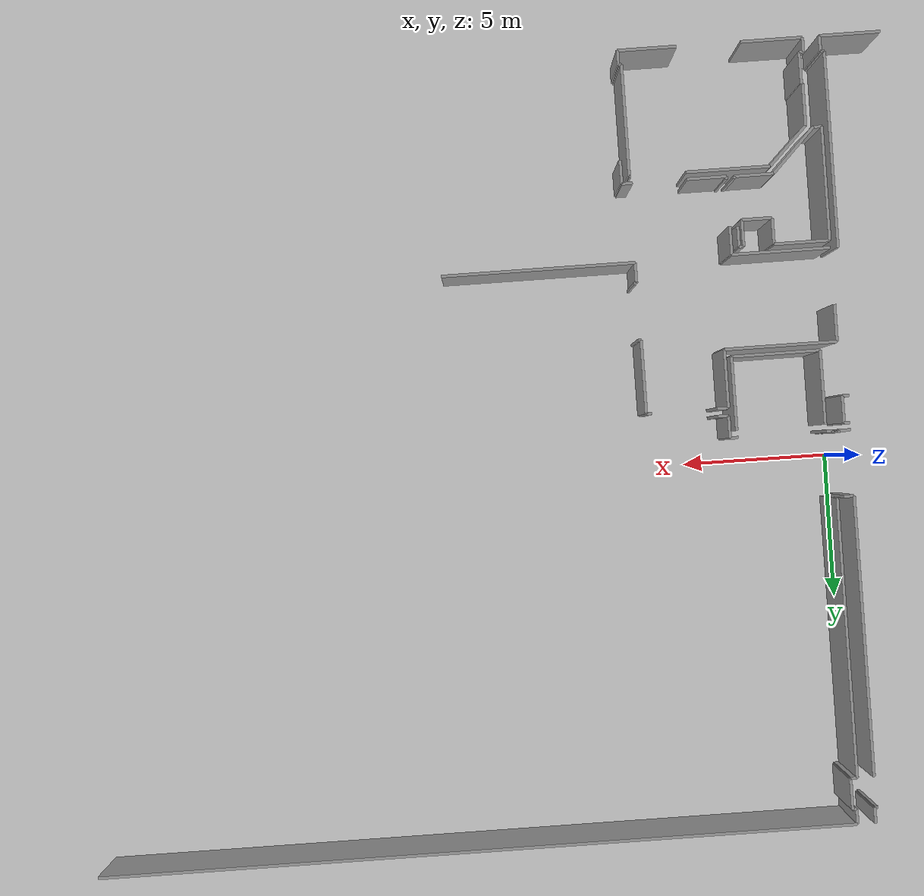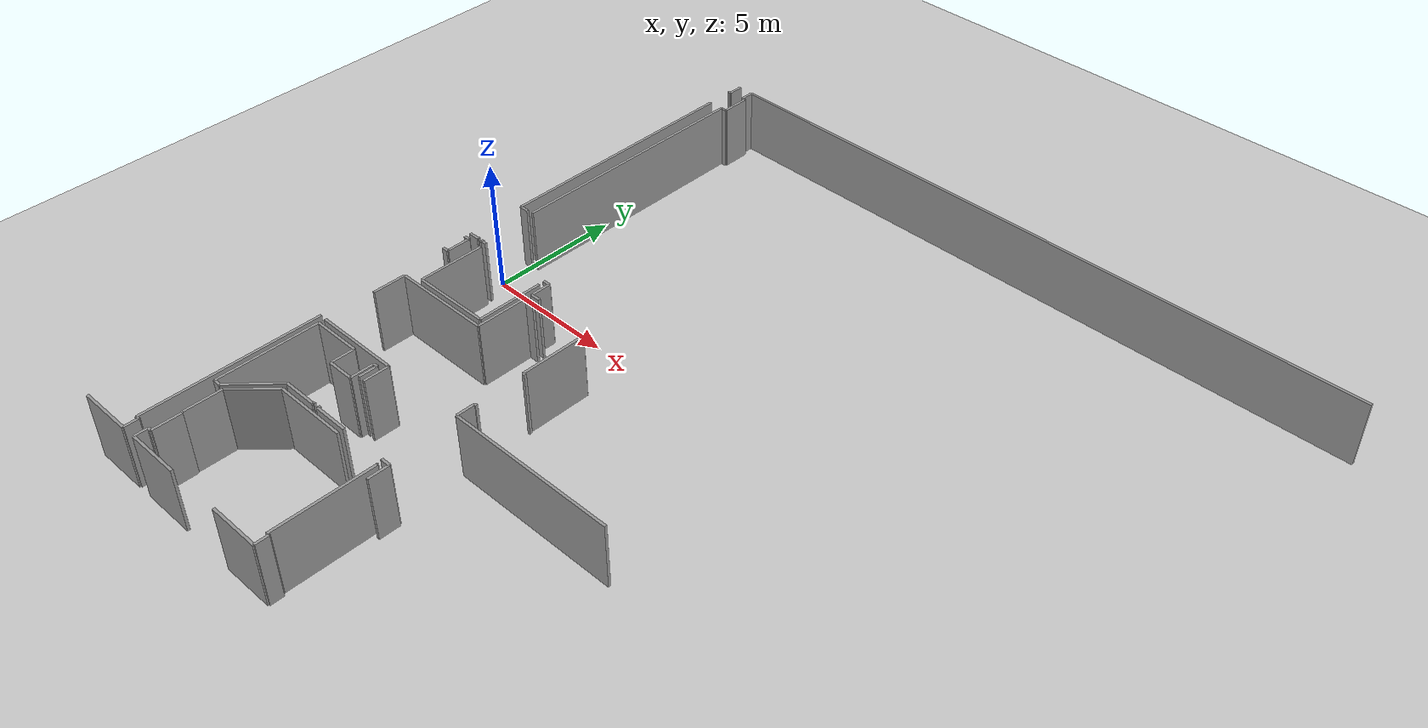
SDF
<sdf version="1.6">
 <world name="default">
  <model name="ground_plane">
   <static>1</static>
   <link name="link">
    <collision name="collision">
     <geometry><plane><normal>0 0 1</normal><size>100 100</size></plane></geometry>
     <surface><friction><ode><mu>100</mu><mu2>50</mu2></ode></friction></surface>
    </collision>
    <visual name="visual">
     <cast_shadows>0</cast_shadows>
     <geometry><plane><normal>0 0 1</normal><size>100 100</size></plane></geometry>
     <material>
      <script><uri>file://media/materials/scripts/gazebo.material</uri><name>Gazebo/Grey</name></script>
     </material>
    </visual>
   </link>
  </model>
  <model name="0510040946_A-40">
   <static>1</static>
   <link name="Wall_46">
    <collision name="Wall_46_Collision">
     <geometry><box><size>0.52936961388 0.1 2.5</size></box></geometry>
     <pose>0.26468480694 0 1.25 0 0 0</pose>
    </collision>
    <visual name="Wall_46_Visual">
     <pose>0.26468480694 0 1.25 0 0 0</pose>
     <geometry><box><size>0.52936961388 0.1 2.5</size></box></geometry>
     <material>
      <script><uri>file://media/materials/scripts/gazebo.material</uri><name>Gazebo/Grey</name></script>
      <ambient>1 1 1 1</ambient>
     </material>
    </visual>
    <pose>58.0574139013 -0.00456571780059 0 0 0 -1.57079632679</pose>
   </link>
   <link name="Wall_47">
    <collision name="Wall_47_Collision">
     <geometry><box><size>0.116806280398 0.1 2.5</size></box></geometry>
     <pose>0.0584031401992 0 1.25 0 0 0</pose>
    </collision>
    <visual name="Wall_47_Visual">
     <pose>0.0584031401992 0 1.25 0 0 0</pose>
     <geometry><box><size>0.116806280398 0.1 2.5</size></box></geometry>
     <material>
      <script><uri>file://media/materials/scripts/gazebo.material</uri><name>Gazebo/Grey</name></script>
      <ambient>1 1 1 1</ambient>
     </material>
    </visual>
    <pose>58.0574139013 -0.53393533168 0 0 0 3.14159265359</pose>
   </link>
   <link name="Wall_50">
    <collision name="Wall_50_Collision">
     <geometry><box><size>9.52383368105 0.1 2.5</size></box></geometry>
     <pose>4.76191684052 0 1.25 0 0 0</pose>
    </collision>
    <visual name="Wall_50_Visual">
     <pose>4.76191684052 0 1.25 0 0 0</pose>
     <geometry><box><size>9.52383368105 0.1 2.5</size></box></geometry>
     <material>
      <script><uri>file://media/materials/scripts/gazebo.material</uri><name>Gazebo/Grey</name></script>
      <ambient>1 1 1 1</ambient>
     </material>
    </visual>
    <pose>58.0036398917 -1.57707502362 0 0 0 -1.57079632679</pose>
   </link>
   <link name="Wall_51">
    <collision name="Wall_51_Collision">
     <geometry><box><size>0.356252813941 0.1 2.5</size></box></geometry>
     <pose>0.17812640697 0 1.25 0 0 0</pose>
    </collision>
    <visual name="Wall_51_Visual">
     <pose>0.17812640697 0 1.25 0 0 0</pose>
     <geometry><box><size>0.356252813941 0.1 2.5</size></box></geometry>
     <material>
      <script><uri>file://media/materials/scripts/gazebo.material</uri><name>Gazebo/Grey</name></script>
      <ambient>1 1 1 1</ambient>
     </material>
    </visual>
    <pose>58.0036398917 -11.1009087047 0 0 0 0.0</pose>
   </link>
   <link name="Wall_52">
    <collision name="Wall_52_Collision">
     <geometry><box><size>0.0750806927209 0.1 2.5</size></box></geometry>
     <pose>0.0375403463604 0 1.25 0 0 0</pose>
    </collision>
    <visual name="Wall_52_Visual">
     <pose>0.0375403463604 0 1.25 0 0 0</pose>
     <geometry><box><size>0.0750806927209 0.1 2.5</size></box></geometry>
     <material>
      <script><uri>file://media/materials/scripts/gazebo.material</uri><name>Gazebo/Grey</name></script>
      <ambient>1 1 1 1</ambient>
     </material>
    </visual>
    <pose>58.3598927056 -13.2592249694 0 0 0 -1.57079632679</pose>
   </link>
   <link name="Wall_53">
    <collision name="Wall_53_Collision">
     <geometry><box><size>0.402544119419 0.1 2.5</size></box></geometry>
     <pose>0.201272059709 0 1.25 0 0 0</pose>
    </collision>
    <visual name="Wall_53_Visual">
     <pose>0.201272059709 0 1.25 0 0 0</pose>
     <geometry><box><size>0.402544119419 0.1 2.5</size></box></geometry>
     <material>
      <script><uri>file://media/materials/scripts/gazebo.material</uri><name>Gazebo/Grey</name></script>
      <ambient>1 1 1 1</ambient>
     </material>
    </visual>
    <pose>58.3598927056 -13.3343056621 0 0 0 3.14159265359</pose>
   </link>
   <link name="Wall_133">
    <collision name="Wall_133_Collision">
     <geometry><box><size>6.66772354579 0.1 2.5</size></box></geometry>
     <pose>3.33386177289 0 1.25 0 0 0</pose>
    </collision>
    <visual name="Wall_133_Visual">
     <pose>3.33386177289 0 1.25 0 0 0</pose>
     <geometry><box><size>6.66772354579 0.1 2.5</size></box></geometry>
     <material>
      <script><uri>file://media/materials/scripts/gazebo.material</uri><name>Gazebo/Grey</name></script>
      <ambient>1 1 1 1</ambient>
     </material>
    </visual>
    <pose>57.9477098486 -19.5032245382 0 0 0 -1.57079632679</pose>
   </link>
   <link name="Wall_134">
    <collision name="Wall_134_Collision">
     <geometry><box><size>0.122132951166 0.1 2.5</size></box></geometry>
     <pose>0.0610664755829 0 1.25 0 0 0</pose>
    </collision>
    <visual name="Wall_134_Visual">
     <pose>0.0610664755829 0 1.25 0 0 0</pose>
     <geometry><box><size>0.122132951166 0.1 2.5</size></box></geometry>
     <material>
      <script><uri>file://media/materials/scripts/gazebo.material</uri><name>Gazebo/Grey</name></script>
      <ambient>1 1 1 1</ambient>
     </material>
    </visual>
    <pose>57.9477098486 -26.170948084 0 0 0 0.0</pose>
   </link>
   <link name="Wall_135">
    <collision name="Wall_135_Collision">
     <geometry><box><size>0.52340881564 0.1 2.5</size></box></geometry>
     <pose>0.26170440782 0 1.25 0 0 0</pose>
    </collision>
    <visual name="Wall_135_Visual">
     <pose>0.26170440782 0 1.25 0 0 0</pose>
     <geometry><box><size>0.52340881564 0.1 2.5</size></box></geometry>
     <material>
      <script><uri>file://media/materials/scripts/gazebo.material</uri><name>Gazebo/Grey</name></script>
      <ambient>1 1 1 1</ambient>
     </material>
    </visual>
    <pose>58.0698427998 -26.170948084 0 0 0 -1.57079632679</pose>
   </link>
   <link name="Wall_136">
    <collision name="Wall_136_Collision">
     <geometry><box><size>2.05558761422 0.1 2.5</size></box></geometry>
     <pose>1.02779380711 0 1.25 0 0 0</pose>
    </collision>
    <visual name="Wall_136_Visual">
     <pose>1.02779380711 0 1.25 0 0 0</pose>
     <geometry><box><size>2.05558761422 0.1 2.5</size></box></geometry>
     <material>
      <script><uri>file://media/materials/scripts/gazebo.material</uri><name>Gazebo/Grey</name></script>
      <ambient>1 1 1 1</ambient>
     </material>
    </visual>
    <pose>58.0698427998 -26.6943568996 0 0 0 3.14159265359</pose>
   </link>
   <link name="Wall_139">
    <collision name="Wall_139_Collision">
     <geometry><box><size>0.203047616632 0.1 2.5</size></box></geometry>
     <pose>0.101523808316 0 1.25 0 0 0</pose>
    </collision>
    <visual name="Wall_139_Visual">
     <pose>0.101523808316 0 1.25 0 0 0</pose>
     <geometry><box><size>0.203047616632 0.1 2.5</size></box></geometry>
     <material>
      <script><uri>file://media/materials/scripts/gazebo.material</uri><name>Gazebo/Grey</name></script>
      <ambient>1 1 1 1</ambient>
     </material>
    </visual>
    <pose>57.9595046196 -13.5789520409 0 0 0 0.0</pose>
   </link>
   <link name="Wall_140">
    <collision name="Wall_140_Collision">
     <geometry><box><size>0.919611660336 0.1 2.5</size></box></geometry>
     <pose>0.459805830168 0 1.25 0 0 0</pose>
    </collision>
    <visual name="Wall_140_Visual">
     <pose>0.459805830168 0 1.25 0 0 0</pose>
     <geometry><box><size>0.919611660336 0.1 2.5</size></box></geometry>
     <material>
      <script><uri>file://media/materials/scripts/gazebo.material</uri><name>Gazebo/Grey</name></script>
      <ambient>1 1 1 1</ambient>
     </material>
    </visual>
    <pose>58.1625522363 -13.5789520409 0 0 0 -1.57079632679</pose>
   </link>
   <link name="Wall_141">
    <collision name="Wall_141_Collision">
     <geometry><box><size>0.237036849147 0.1 2.5</size></box></geometry>
     <pose>0.118518424574 0 1.25 0 0 0</pose>
    </collision>
    <visual name="Wall_141_Visual">
     <pose>0.118518424574 0 1.25 0 0 0</pose>
     <geometry><box><size>0.237036849147 0.1 2.5</size></box></geometry>
     <material>
      <script><uri>file://media/materials/scripts/gazebo.material</uri><name>Gazebo/Grey</name></script>
      <ambient>1 1 1 1</ambient>
     </material>
    </visual>
    <pose>58.1625522363 -14.4985637013 0 0 0 3.14159265359</pose>
   </link>
   <link name="Wall_145">
    <collision name="Wall_145_Collision">
     <geometry><box><size>9.49529794479 0.1 2.5</size></box></geometry>
     <pose>4.7476489724 0 1.25 0 0 0</pose>
    </collision>
    <visual name="Wall_145_Visual">
     <pose>4.7476489724 0 1.25 0 0 0</pose>
     <geometry><box><size>9.49529794479 0.1 2.5</size></box></geometry>
     <material>
      <script><uri>file://media/materials/scripts/gazebo.material</uri><name>Gazebo/Grey</name></script>
      <ambient>1 1 1 1</ambient>
     </material>
    </visual>
    <pose>58.5744814423 -11.0744021763 0 0 0 1.57079632679</pose>
   </link>
   <link name="Wall_146">
    <collision name="Wall_146_Collision">
     <geometry><box><size>0.225495729151 0.1 2.5</size></box></geometry>
     <pose>0.112747864576 0 1.25 0 0 0</pose>
    </collision>
    <visual name="Wall_146_Visual">
     <pose>0.112747864576 0 1.25 0 0 0</pose>
     <geometry><box><size>0.225495729151 0.1 2.5</size></box></geometry>
     <material>
      <script><uri>file://media/materials/scripts/gazebo.material</uri><name>Gazebo/Grey</name></script>
      <ambient>1 1 1 1</ambient>
     </material>
    </visual>
    <pose>58.5744814423 -1.57910423153 0 0 0 0.0</pose>
   </link>
   <link name="Wall_147">
    <collision name="Wall_147_Collision">
     <geometry><box><size>1.05277842952 0.1 2.5</size></box></geometry>
     <pose>0.52638921476 0 1.25 0 0 0</pose>
    </collision>
    <visual name="Wall_147_Visual">
     <pose>0.52638921476 0 1.25 0 0 0</pose>
     <geometry><box><size>1.05277842952 0.1 2.5</size></box></geometry>
     <material>
      <script><uri>file://media/materials/scripts/gazebo.material</uri><name>Gazebo/Grey</name></script>
      <ambient>1 1 1 1</ambient>
     </material>
    </visual>
    <pose>58.7999771714 -1.57910423153 0 0 0 1.57079632679</pose>
   </link>
   <link name="Wall_148">
    <collision name="Wall_148_Collision">
     <geometry><box><size>0.13164486325 0.1 2.5</size></box></geometry>
     <pose>0.0658224316252 0 1.25 0 0 0</pose>
    </collision>
    <visual name="Wall_148_Visual">
     <pose>0.0658224316252 0 1.25 0 0 0</pose>
     <geometry><box><size>0.13164486325 0.1 2.5</size></box></geometry>
     <material>
      <script><uri>file://media/materials/scripts/gazebo.material</uri><name>Gazebo/Grey</name></script>
      <ambient>1 1 1 1</ambient>
     </material>
    </visual>
    <pose>58.7999771714 -0.526325802013 0 0 0 3.14159265359</pose>
   </link>
   <link name="Wall_149">
    <collision name="Wall_149_Collision">
     <geometry><box><size>0.509838487733 0.1 2.5</size></box></geometry>
     <pose>0.254919243866 0 1.25 0 0 0</pose>
    </collision>
    <visual name="Wall_149_Visual">
     <pose>0.254919243866 0 1.25 0 0 0</pose>
     <geometry><box><size>0.509838487733 0.1 2.5</size></box></geometry>
     <material>
      <script><uri>file://media/materials/scripts/gazebo.material</uri><name>Gazebo/Grey</name></script>
      <ambient>1 1 1 1</ambient>
     </material>
    </visual>
    <pose>58.6683323082 -0.526325802013 0 0 0 1.57079632679</pose>
   </link>
   <link name="Wall_150">
    <collision name="Wall_150_Collision">
     <geometry><box><size>25.7486191874 0.1 2.5</size></box></geometry>
     <pose>12.8743095937 0 1.25 0 0 0</pose>
    </collision>
    <visual name="Wall_150_Visual">
     <pose>12.8743095937 0 1.25 0 0 0</pose>
     <geometry><box><size>25.7486191874 0.1 2.5</size></box></geometry>
     <material>
      <script><uri>file://media/materials/scripts/gazebo.material</uri><name>Gazebo/Grey</name></script>
      <ambient>1 1 1 1</ambient>
     </material>
    </visual>
    <pose>58.6683323082 -0.0164873142799 0 0 0 0.0</pose>
   </link>
   <link name="Wall_165">
    <collision name="Wall_165_Collision">
     <geometry><box><size>0.365764726025 0.1 2.5</size></box></geometry>
     <pose>0.182882363013 0 1.25 0 0 0</pose>
    </collision>
    <visual name="Wall_165_Visual">
     <pose>0.182882363013 0 1.25 0 0 0</pose>
     <geometry><box><size>0.365764726025 0.1 2.5</size></box></geometry>
     <material>
      <script><uri>file://media/materials/scripts/gazebo.material</uri><name>Gazebo/Grey</name></script>
      <ambient>1 1 1 1</ambient>
     </material>
    </visual>
    <pose>62.4080356633 -14.1014730781 0 0 0 3.14159265359</pose>
   </link>
   <link name="Wall_166">
    <collision name="Wall_166_Collision">
     <geometry><box><size>0.756767725448 0.1 2.5</size></box></geometry>
     <pose>0.378383862724 0 1.25 0 0 0</pose>
    </collision>
    <visual name="Wall_166_Visual">
     <pose>0.378383862724 0 1.25 0 0 0</pose>
     <geometry><box><size>0.756767725448 0.1 2.5</size></box></geometry>
     <material>
      <script><uri>file://media/materials/scripts/gazebo.material</uri><name>Gazebo/Grey</name></script>
      <ambient>1 1 1 1</ambient>
     </material>
    </visual>
    <pose>62.0422709373 -14.1014730781 0 0 0 1.57079632679</pose>
   </link>
   <link name="Wall_167">
    <collision name="Wall_167_Collision">
     <geometry><box><size>0.269123699246 0.1 2.5</size></box></geometry>
     <pose>0.134561849623 0 1.25 0 0 0</pose>
    </collision>
    <visual name="Wall_167_Visual">
     <pose>0.134561849623 0 1.25 0 0 0</pose>
     <geometry><box><size>0.269123699246 0.1 2.5</size></box></geometry>
     <material>
      <script><uri>file://media/materials/scripts/gazebo.material</uri><name>Gazebo/Grey</name></script>
      <ambient>1 1 1 1</ambient>
     </material>
    </visual>
    <pose>62.0422709373 -13.3447053527 0 0 0 3.14159265359</pose>
   </link>
   <link name="Wall_168">
    <collision name="Wall_168_Collision">
     <geometry><box><size>0.212686354211 0.1 2.5</size></box></geometry>
     <pose>0.106343177105 0 1.25 0 0 0</pose>
    </collision>
    <visual name="Wall_168_Visual">
     <pose>0.106343177105 0 1.25 0 0 0</pose>
     <geometry><box><size>0.212686354211 0.1 2.5</size></box></geometry>
     <material>
      <script><uri>file://media/materials/scripts/gazebo.material</uri><name>Gazebo/Grey</name></script>
      <ambient>1 1 1 1</ambient>
     </material>
    </visual>
    <pose>58.7913530378 -13.3447053527 0 0 0 3.14159265359</pose>
   </link>
   <link name="Wall_169">
    <collision name="Wall_169_Collision">
     <geometry><box><size>0.076222122171 0.1 2.5</size></box></geometry>
     <pose>0.0381110610855 0 1.25 0 0 0</pose>
    </collision>
    <visual name="Wall_169_Visual">
     <pose>0.0381110610855 0 1.25 0 0 0</pose>
     <geometry><box><size>0.076222122171 0.1 2.5</size></box></geometry>
     <material>
      <script><uri>file://media/materials/scripts/gazebo.material</uri><name>Gazebo/Grey</name></script>
      <ambient>1 1 1 1</ambient>
     </material>
    </visual>
    <pose>58.5786666836 -13.3447053527 0 0 0 1.57079632679</pose>
   </link>
   <link name="Wall_170">
    <collision name="Wall_170_Collision">
     <geometry><box><size>2.51837384351 0.1 2.5</size></box></geometry>
     <pose>1.25918692176 0 1.25 0 0 0</pose>
    </collision>
    <visual name="Wall_170_Visual">
     <pose>1.25918692176 0 1.25 0 0 0</pose>
     <geometry><box><size>2.51837384351 0.1 2.5</size></box></geometry>
     <material>
      <script><uri>file://media/materials/scripts/gazebo.material</uri><name>Gazebo/Grey</name></script>
      <ambient>1 1 1 1</ambient>
     </material>
    </visual>
    <pose>58.7995966949 -16.0944088981 0 0 0 1.57079632679</pose>
   </link>
   <link name="Wall_171">
    <collision name="Wall_171_Collision">
     <geometry><box><size>2.51013018637 0.1 2.5</size></box></geometry>
     <pose>1.25506509319 0 1.25 0 0 0</pose>
    </collision>
    <visual name="Wall_171_Visual">
     <pose>1.25506509319 0 1.25 0 0 0</pose>
     <geometry><box><size>2.51013018637 0.1 2.5</size></box></geometry>
     <material>
      <script><uri>file://media/materials/scripts/gazebo.material</uri><name>Gazebo/Grey</name></script>
      <ambient>1 1 1 1</ambient>
     </material>
    </visual>
    <pose>61.8026975783 -13.5760350546 0 0 0 -1.57079632679</pose>
   </link>
   <link name="Wall_172">
    <collision name="Wall_172_Collision">
     <geometry><box><size>3.00311219794 0.1 2.5</size></box></geometry>
     <pose>1.50155609897 0 1.25 0 0 0</pose>
    </collision>
    <visual name="Wall_172_Visual">
     <pose>1.50155609897 0 1.25 0 0 0</pose>
     <geometry><box><size>3.00311219794 0.1 2.5</size></box></geometry>
     <material>
      <script><uri>file://media/materials/scripts/gazebo.material</uri><name>Gazebo/Grey</name></script>
      <ambient>1 1 1 1</ambient>
     </material>
    </visual>
    <pose>61.8026975783 -16.0861652409 0 0 0 -3.13884761213</pose>
   </link>
   <link name="Wall_173">
    <collision name="Wall_173_Collision">
     <geometry><box><size>3.81643277932 0.1 2.5</size></box></geometry>
     <pose>1.90821638966 0 1.25 0 0 0</pose>
    </collision>
    <visual name="Wall_173_Visual">
     <pose>1.90821638966 0 1.25 0 0 0</pose>
     <geometry><box><size>3.81643277932 0.1 2.5</size></box></geometry>
     <material>
      <script><uri>file://media/materials/scripts/gazebo.material</uri><name>Gazebo/Grey</name></script>
      <ambient>1 1 1 1</ambient>
     </material>
    </visual>
    <pose>58.2074484613 -16.3446355986 0 0 0 0.0</pose>
   </link>
   <link name="Wall_174">
    <collision name="Wall_174_Collision">
     <geometry><box><size>1.97911184106 0.1 2.5</size></box></geometry>
     <pose>0.989555920531 0 1.25 0 0 0</pose>
    </collision>
    <visual name="Wall_174_Visual">
     <pose>0.989555920531 0 1.25 0 0 0</pose>
     <geometry><box><size>1.97911184106 0.1 2.5</size></box></geometry>
     <material>
      <script><uri>file://media/materials/scripts/gazebo.material</uri><name>Gazebo/Grey</name></script>
      <ambient>1 1 1 1</ambient>
     </material>
    </visual>
    <pose>62.0238812406 -16.3446355986 0 0 0 1.57079632679</pose>
   </link>
   <link name="Wall_175">
    <collision name="Wall_175_Collision">
     <geometry><box><size>0.394807764257 0.1 2.5</size></box></geometry>
     <pose>0.197403882128 0 1.25 0 0 0</pose>
    </collision>
    <visual name="Wall_175_Visual">
     <pose>0.197403882128 0 1.25 0 0 0</pose>
     <geometry><box><size>0.394807764257 0.1 2.5</size></box></geometry>
     <material>
      <script><uri>file://media/materials/scripts/gazebo.material</uri><name>Gazebo/Grey</name></script>
      <ambient>1 1 1 1</ambient>
     </material>
    </visual>
    <pose>62.0238812406 -14.3655237576 0 0 0 0.0</pose>
   </link>
   <link name="Wall_176">
    <collision name="Wall_176_Collision">
     <geometry><box><size>0.183516490485 0.1 2.5</size></box></geometry>
     <pose>0.0917582452425 0 1.25 0 0 0</pose>
    </collision>
    <visual name="Wall_176_Visual">
     <pose>0.0917582452425 0 1.25 0 0 0</pose>
     <geometry><box><size>0.183516490485 0.1 2.5</size></box></geometry>
     <material>
      <script><uri>file://media/materials/scripts/gazebo.material</uri><name>Gazebo/Grey</name></script>
      <ambient>1 1 1 1</ambient>
     </material>
    </visual>
    <pose>64.6284964204 -14.3655237576 0 0 0 0.0</pose>
   </link>
   <link name="Wall_177">
    <collision name="Wall_177_Collision">
     <geometry><box><size>2.48933080528 0.1 2.5</size></box></geometry>
     <pose>1.24466540264 0 1.25 0 0 0</pose>
    </collision>
    <visual name="Wall_177_Visual">
     <pose>1.24466540264 0 1.25 0 0 0</pose>
     <geometry><box><size>2.48933080528 0.1 2.5</size></box></geometry>
     <material>
      <script><uri>file://media/materials/scripts/gazebo.material</uri><name>Gazebo/Grey</name></script>
      <ambient>1 1 1 1</ambient>
     </material>
    </visual>
    <pose>64.8120129108 -14.3655237576 0 0 0 -1.57079632679</pose>
   </link>
   <link name="Wall_178">
    <collision name="Wall_178_Collision">
     <geometry><box><size>0.101460395569 0.1 2.5</size></box></geometry>
     <pose>0.0507301977844 0 1.25 0 0 0</pose>
    </collision>
    <visual name="Wall_178_Visual">
     <pose>0.0507301977844 0 1.25 0 0 0</pose>
     <geometry><box><size>0.101460395569 0.1 2.5</size></box></geometry>
     <material>
      <script><uri>file://media/materials/scripts/gazebo.material</uri><name>Gazebo/Grey</name></script>
      <ambient>1 1 1 1</ambient>
     </material>
    </visual>
    <pose>64.8120129108 -16.8548545629 0 0 0 0.0</pose>
   </link>
   <link name="Wall_179">
    <collision name="Wall_179_Collision">
     <geometry><box><size>0.0840853028276 0.1 2.5</size></box></geometry>
     <pose>0.0420426514138 0 1.25 0 0 0</pose>
    </collision>
    <visual name="Wall_179_Visual">
     <pose>0.0420426514138 0 1.25 0 0 0</pose>
     <geometry><box><size>0.0840853028276 0.1 2.5</size></box></geometry>
     <material>
      <script><uri>file://media/materials/scripts/gazebo.material</uri><name>Gazebo/Grey</name></script>
      <ambient>1 1 1 1</ambient>
     </material>
    </visual>
    <pose>64.9134733064 -18.7848849376 0 0 0 3.14159265359</pose>
   </link>
   <link name="Wall_180">
    <collision name="Wall_180_Collision">
     <geometry><box><size>0.703120541291 0.1 2.5</size></box></geometry>
     <pose>0.351560270646 0 1.25 0 0 0</pose>
    </collision>
    <visual name="Wall_180_Visual">
     <pose>0.351560270646 0 1.25 0 0 0</pose>
     <geometry><box><size>0.703120541291 0.1 2.5</size></box></geometry>
     <material>
      <script><uri>file://media/materials/scripts/gazebo.material</uri><name>Gazebo/Grey</name></script>
      <ambient>1 1 1 1</ambient>
     </material>
    </visual>
    <pose>64.8293880036 -18.7848849376 0 0 0 -1.57079632679</pose>
   </link>
   <link name="Wall_181">
    <collision name="Wall_181_Collision">
     <geometry><box><size>6.56524854626 0.1 2.5</size></box></geometry>
     <pose>3.28262427313 0 1.25 0 0 0</pose>
    </collision>
    <visual name="Wall_181_Visual">
     <pose>3.28262427313 0 1.25 0 0 0</pose>
     <geometry><box><size>6.56524854626 0.1 2.5</size></box></geometry>
     <material>
      <script><uri>file://media/materials/scripts/gazebo.material</uri><name>Gazebo/Grey</name></script>
      <ambient>1 1 1 1</ambient>
     </material>
    </visual>
    <pose>64.8293880036 -19.4880054789 0 0 0 0.0</pose>
   </link>
   <link name="Wall_187">
    <collision name="Wall_187_Collision">
     <geometry><box><size>0.800522521037 0.1 2.5</size></box></geometry>
     <pose>0.400261260519 0 1.25 0 0 0</pose>
    </collision>
    <visual name="Wall_187_Visual">
     <pose>0.400261260519 0 1.25 0 0 0</pose>
     <geometry><box><size>0.800522521037 0.1 2.5</size></box></geometry>
     <material>
      <script><uri>file://media/materials/scripts/gazebo.material</uri><name>Gazebo/Grey</name></script>
      <ambient>1 1 1 1</ambient>
     </material>
    </visual>
    <pose>65.0874778848 -22.9793845159 0 0 0 1.57079632679</pose>
   </link>
   <link name="Wall_188">
    <collision name="Wall_188_Collision">
     <geometry><box><size>0.36589155152 0.1 2.5</size></box></geometry>
     <pose>0.18294577576 0 1.25 0 0 0</pose>
    </collision>
    <visual name="Wall_188_Visual">
     <pose>0.18294577576 0 1.25 0 0 0</pose>
     <geometry><box><size>0.36589155152 0.1 2.5</size></box></geometry>
     <material>
      <script><uri>file://media/materials/scripts/gazebo.material</uri><name>Gazebo/Grey</name></script>
      <ambient>1 1 1 1</ambient>
     </material>
    </visual>
    <pose>65.0874778848 -22.1788619948 0 0 0 3.14159265359</pose>
   </link>
   <link name="Wall_189">
    <collision name="Wall_189_Collision">
     <geometry><box><size>1.33154086634 0.1 2.5</size></box></geometry>
     <pose>0.665770433172 0 1.25 0 0 0</pose>
    </collision>
    <visual name="Wall_189_Visual">
     <pose>0.665770433172 0 1.25 0 0 0</pose>
     <geometry><box><size>1.33154086634 0.1 2.5</size></box></geometry>
     <material>
      <script><uri>file://media/materials/scripts/gazebo.material</uri><name>Gazebo/Grey</name></script>
      <ambient>1 1 1 1</ambient>
     </material>
    </visual>
    <pose>62.8758949124 -22.1788619948 0 0 0 3.14159265359</pose>
   </link>
   <link name="Wall_190">
    <collision name="Wall_190_Collision">
     <geometry><box><size>0.0994311876573 0.1 2.5</size></box></geometry>
     <pose>0.0497155938287 0 1.25 0 0 0</pose>
    </collision>
    <visual name="Wall_190_Visual">
     <pose>0.0497155938287 0 1.25 0 0 0</pose>
     <geometry><box><size>0.0994311876573 0.1 2.5</size></box></geometry>
     <material>
      <script><uri>file://media/materials/scripts/gazebo.material</uri><name>Gazebo/Grey</name></script>
      <ambient>1 1 1 1</ambient>
     </material>
    </visual>
    <pose>61.5443540461 -22.1788619948 0 0 0 1.57079632679</pose>
   </link>
   <link name="Wall_191">
    <collision name="Wall_191_Collision">
     <geometry><box><size>0.961210422519 0.1 2.5</size></box></geometry>
     <pose>0.48060521126 0 1.25 0 0 0</pose>
    </collision>
    <visual name="Wall_191_Visual">
     <pose>0.48060521126 0 1.25 0 0 0</pose>
     <geometry><box><size>0.961210422519 0.1 2.5</size></box></geometry>
     <material>
      <script><uri>file://media/materials/scripts/gazebo.material</uri><name>Gazebo/Grey</name></script>
      <ambient>1 1 1 1</ambient>
     </material>
    </visual>
    <pose>61.5443540461 -20.4898000596 0 0 0 1.57079632679</pose>
   </link>
   <link name="Wall_192">
    <collision name="Wall_192_Collision">
     <geometry><box><size>3.33956892014 0.1 2.5</size></box></geometry>
     <pose>1.66978446007 0 1.25 0 0 0</pose>
    </collision>
    <visual name="Wall_192_Visual">
     <pose>1.66978446007 0 1.25 0 0 0</pose>
     <geometry><box><size>3.33956892014 0.1 2.5</size></box></geometry>
     <material>
      <script><uri>file://media/materials/scripts/gazebo.material</uri><name>Gazebo/Grey</name></script>
      <ambient>1 1 1 1</ambient>
     </material>
    </visual>
    <pose>61.5443540461 -19.5285896371 0 0 0 3.14159265359</pose>
   </link>
   <link name="Wall_193">
    <collision name="Wall_193_Collision">
     <geometry><box><size>1.26381885862 0.1 2.5</size></box></geometry>
     <pose>0.631909429312 0 1.25 0 0 0</pose>
    </collision>
    <visual name="Wall_193_Visual">
     <pose>0.631909429312 0 1.25 0 0 0</pose>
     <geometry><box><size>1.26381885862 0.1 2.5</size></box></geometry>
     <material>
      <script><uri>file://media/materials/scripts/gazebo.material</uri><name>Gazebo/Grey</name></script>
      <ambient>1 1 1 1</ambient>
     </material>
    </visual>
    <pose>58.2047851259 -17.608451651 0 0 0 1.5686889541</pose>
   </link>
   <link name="Wall_202">
    <collision name="Wall_202_Collision">
     <geometry><box><size>3.85562185711 0.1 2.5</size></box></geometry>
     <pose>1.92781092855 0 1.25 0 0 0</pose>
    </collision>
    <visual name="Wall_202_Visual">
     <pose>1.92781092855 0 1.25 0 0 0</pose>
     <geometry><box><size>3.85562185711 0.1 2.5</size></box></geometry>
     <material>
      <script><uri>file://media/materials/scripts/gazebo.material</uri><name>Gazebo/Grey</name></script>
      <ambient>1 1 1 1</ambient>
     </material>
    </visual>
    <pose>58.2074484613 -23.6329162888 0 0 0 1.57079632679</pose>
   </link>
   <link name="Wall_203">
    <collision name="Wall_203_Collision">
     <geometry><box><size>1.89198272637 0.1 2.5</size></box></geometry>
     <pose>0.945991363184 0 1.25 0 0 0</pose>
    </collision>
    <visual name="Wall_203_Visual">
     <pose>0.945991363184 0 1.25 0 0 0</pose>
     <geometry><box><size>1.89198272637 0.1 2.5</size></box></geometry>
     <material>
      <script><uri>file://media/materials/scripts/gazebo.material</uri><name>Gazebo/Grey</name></script>
      <ambient>1 1 1 1</ambient>
     </material>
    </visual>
    <pose>58.2074484613 -19.7772944317 0 0 0 0.0</pose>
   </link>
   <link name="Wall_204">
    <collision name="Wall_204_Collision">
     <geometry><box><size>0.895641641883 0.1 2.5</size></box></geometry>
     <pose>0.447820820941 0 1.25 0 0 0</pose>
    </collision>
    <visual name="Wall_204_Visual">
     <pose>0.447820820941 0 1.25 0 0 0</pose>
     <geometry><box><size>0.895641641883 0.1 2.5</size></box></geometry>
     <material>
      <script><uri>file://media/materials/scripts/gazebo.material</uri><name>Gazebo/Grey</name></script>
      <ambient>1 1 1 1</ambient>
     </material>
    </visual>
    <pose>60.0994311877 -19.7772944317 0 0 0 -1.57079632679</pose>
   </link>
   <link name="Wall_205">
    <collision name="Wall_205_Collision">
     <geometry><box><size>1.02525729722 0.1 2.5</size></box></geometry>
     <pose>0.512628648611 0 1.25 0 0 0</pose>
    </collision>
    <visual name="Wall_205_Visual">
     <pose>0.512628648611 0 1.25 0 0 0</pose>
     <geometry><box><size>1.02525729722 0.1 2.5</size></box></geometry>
     <material>
      <script><uri>file://media/materials/scripts/gazebo.material</uri><name>Gazebo/Grey</name></script>
      <ambient>1 1 1 1</ambient>
     </material>
    </visual>
    <pose>60.0994311877 -20.6729360736 0 0 0 0.0</pose>
   </link>
   <link name="Wall_206">
    <collision name="Wall_206_Collision">
     <geometry><box><size>0.89640259485 0.1 2.5</size></box></geometry>
     <pose>0.448201297425 0 1.25 0 0 0</pose>
    </collision>
    <visual name="Wall_206_Visual">
     <pose>0.448201297425 0 1.25 0 0 0</pose>
     <geometry><box><size>0.89640259485 0.1 2.5</size></box></geometry>
     <material>
      <script><uri>file://media/materials/scripts/gazebo.material</uri><name>Gazebo/Grey</name></script>
      <ambient>1 1 1 1</ambient>
     </material>
    </visual>
    <pose>61.1246884849 -20.6729360736 0 0 0 1.57079632679</pose>
   </link>
   <link name="Wall_207">
    <collision name="Wall_207_Collision">
     <geometry><box><size>0.152571069836 0.1 2.5</size></box></geometry>
     <pose>0.0762855349182 0 1.25 0 0 0</pose>
    </collision>
    <visual name="Wall_207_Visual">
     <pose>0.0762855349182 0 1.25 0 0 0</pose>
     <geometry><box><size>0.152571069836 0.1 2.5</size></box></geometry>
     <material>
      <script><uri>file://media/materials/scripts/gazebo.material</uri><name>Gazebo/Grey</name></script>
      <ambient>1 1 1 1</ambient>
     </material>
    </visual>
    <pose>61.1246884849 -19.7765334788 0 0 0 0.0</pose>
   </link>
   <link name="Wall_208">
    <collision name="Wall_208_Collision">
     <geometry><box><size>0.691325770306 0.1 2.5</size></box></geometry>
     <pose>0.345662885153 0 1.25 0 0 0</pose>
    </collision>
    <visual name="Wall_208_Visual">
     <pose>0.345662885153 0 1.25 0 0 0</pose>
     <geometry><box><size>0.691325770306 0.1 2.5</size></box></geometry>
     <material>
      <script><uri>file://media/materials/scripts/gazebo.material</uri><name>Gazebo/Grey</name></script>
      <ambient>1 1 1 1</ambient>
     </material>
    </visual>
    <pose>61.2772595547 -19.7765334788 0 0 0 -1.57079632679</pose>
   </link>
   <link name="Wall_209">
    <collision name="Wall_209_Collision">
     <geometry><box><size>0.0787586320602 0.1 2.5</size></box></geometry>
     <pose>0.0393793160301 0 1.25 0 0 0</pose>
    </collision>
    <visual name="Wall_209_Visual">
     <pose>0.0393793160301 0 1.25 0 0 0</pose>
     <geometry><box><size>0.0787586320602 0.1 2.5</size></box></geometry>
     <material>
      <script><uri>file://media/materials/scripts/gazebo.material</uri><name>Gazebo/Grey</name></script>
      <ambient>1 1 1 1</ambient>
     </material>
    </visual>
    <pose>61.2772595547 -22.082981921 0 0 0 -1.57079632679</pose>
   </link>
   <link name="Wall_210">
    <collision name="Wall_210_Collision">
     <geometry><box><size>1.33978452348 0.1 2.5</size></box></geometry>
     <pose>0.669892261742 0 1.25 0 0 0</pose>
    </collision>
    <visual name="Wall_210_Visual">
     <pose>0.669892261742 0 1.25 0 0 0</pose>
     <geometry><box><size>1.33978452348 0.1 2.5</size></box></geometry>
     <material>
      <script><uri>file://media/materials/scripts/gazebo.material</uri><name>Gazebo/Grey</name></script>
      <ambient>1 1 1 1</ambient>
     </material>
    </visual>
    <pose>61.2772595547 -22.1617405531 0 0 0 3.14159265359</pose>
   </link>
   <link name="Wall_211">
    <collision name="Wall_211_Collision">
     <geometry><box><size>2.06916841696 0.1 2.5</size></box></geometry>
     <pose>1.03458420848 0 1.25 0 0 0</pose>
    </collision>
    <visual name="Wall_211_Visual">
     <pose>1.03458420848 0 1.25 0 0 0</pose>
     <geometry><box><size>2.06916841696 0.1 2.5</size></box></geometry>
     <material>
      <script><uri>file://media/materials/scripts/gazebo.material</uri><name>Gazebo/Grey</name></script>
      <ambient>1 1 1 1</ambient>
     </material>
    </visual>
    <pose>59.9374750312 -22.1617405531 0 0 0 -2.34683276647</pose>
   </link>
   <link name="Wall_212">
    <collision name="Wall_212_Collision">
     <geometry><box><size>0.280720289169 0.1 2.5</size></box></geometry>
     <pose>0.140360144584 0 1.25 0 0 0</pose>
    </collision>
    <visual name="Wall_212_Visual">
     <pose>0.140360144584 0 1.25 0 0 0</pose>
     <geometry><box><size>0.280720289169 0.1 2.5</size></box></geometry>
     <material>
      <script><uri>file://media/materials/scripts/gazebo.material</uri><name>Gazebo/Grey</name></script>
      <ambient>1 1 1 1</ambient>
     </material>
    </visual>
    <pose>58.4881132805 -23.6384966106 0 0 0 3.12171276049</pose>
   </link>
   <link name="Wall_213">
    <collision name="Wall_213_Collision">
     <geometry><box><size>0.489165932136 0.1 2.5</size></box></geometry>
     <pose>0.244582966068 0 1.25 0 0 0</pose>
    </collision>
    <visual name="Wall_213_Visual">
     <pose>0.244582966068 0 1.25 0 0 0</pose>
     <geometry><box><size>0.489165932136 0.1 2.5</size></box></geometry>
     <material>
      <script><uri>file://media/materials/scripts/gazebo.material</uri><name>Gazebo/Grey</name></script>
      <ambient>1 1 1 1</ambient>
     </material>
    </visual>
    <pose>58.6477865781 -26.6804060952 0 0 0 1.57079632679</pose>
   </link>
   <link name="Wall_214">
    <collision name="Wall_214_Collision">
     <geometry><box><size>0.143820110719 0.1 2.5</size></box></geometry>
     <pose>0.0719100553593 0 1.25 0 0 0</pose>
    </collision>
    <visual name="Wall_214_Visual">
     <pose>0.0719100553593 0 1.25 0 0 0</pose>
     <geometry><box><size>0.143820110719 0.1 2.5</size></box></geometry>
     <material>
      <script><uri>file://media/materials/scripts/gazebo.material</uri><name>Gazebo/Grey</name></script>
      <ambient>1 1 1 1</ambient>
     </material>
    </visual>
    <pose>58.6477865781 -26.1912401631 0 0 0 0.0</pose>
   </link>
   <link name="Wall_215">
    <collision name="Wall_215_Collision">
     <geometry><box><size>1.06064161018 0.1 2.5</size></box></geometry>
     <pose>0.530320805088 0 1.25 0 0 0</pose>
    </collision>
    <visual name="Wall_215_Visual">
     <pose>0.530320805088 0 1.25 0 0 0</pose>
     <geometry><box><size>1.06064161018 0.1 2.5</size></box></geometry>
     <material>
      <script><uri>file://media/materials/scripts/gazebo.material</uri><name>Gazebo/Grey</name></script>
      <ambient>1 1 1 1</ambient>
     </material>
    </visual>
    <pose>58.7916066888 -26.1912401631 0 0 0 1.57079632679</pose>
   </link>
   <link name="Wall_216">
    <collision name="Wall_216_Collision">
     <geometry><box><size>0.040710983722 0.1 2.5</size></box></geometry>
     <pose>0.020355491861 0 1.25 0 0 0</pose>
    </collision>
    <visual name="Wall_216_Visual">
     <pose>0.020355491861 0 1.25 0 0 0</pose>
     <geometry><box><size>0.040710983722 0.1 2.5</size></box></geometry>
     <material>
      <script><uri>file://media/materials/scripts/gazebo.material</uri><name>Gazebo/Grey</name></script>
      <ambient>1 1 1 1</ambient>
     </material>
    </visual>
    <pose>58.7916066888 -25.1305985529 0 0 0 3.14159265359</pose>
   </link>
   <link name="Wall_217">
    <collision name="Wall_217_Collision">
     <geometry><box><size>1.430972054 0.1 2.5</size></box></geometry>
     <pose>0.715486027001 0 1.25 0 0 0</pose>
    </collision>
    <visual name="Wall_217_Visual">
     <pose>0.715486027001 0 1.25 0 0 0</pose>
     <geometry><box><size>1.430972054 0.1 2.5</size></box></geometry>
     <material>
      <script><uri>file://media/materials/scripts/gazebo.material</uri><name>Gazebo/Grey</name></script>
      <ambient>1 1 1 1</ambient>
     </material>
    </visual>
    <pose>58.7508957051 -25.1305985529 0 0 0 1.57079632679</pose>
   </link>
   <link name="Wall_218">
    <collision name="Wall_218_Collision">
     <geometry><box><size>1.8195020038 0.1 2.5</size></box></geometry>
     <pose>0.9097510019 0 1.25 0 0 0</pose>
    </collision>
    <visual name="Wall_218_Visual">
     <pose>0.9097510019 0 1.25 0 0 0</pose>
     <geometry><box><size>1.8195020038 0.1 2.5</size></box></geometry>
     <material>
      <script><uri>file://media/materials/scripts/gazebo.material</uri><name>Gazebo/Grey</name></script>
      <ambient>1 1 1 1</ambient>
     </material>
    </visual>
    <pose>58.7508957051 -23.6996264989 0 0 0 0.784165969236</pose>
   </link>
   <link name="Wall_219">
    <collision name="Wall_219_Collision">
     <geometry><box><size>2.86219775899 0.1 2.5</size></box></geometry>
     <pose>1.4310988795 0 1.25 0 0 0</pose>
    </collision>
    <visual name="Wall_219_Visual">
     <pose>1.4310988795 0 1.25 0 0 0</pose>
     <geometry><box><size>2.86219775899 0.1 2.5</size></box></geometry>
     <material>
      <script><uri>file://media/materials/scripts/gazebo.material</uri><name>Gazebo/Grey</name></script>
      <ambient>1 1 1 1</ambient>
     </material>
    </visual>
    <pose>60.0390622523 -22.414630589 0 0 0 0.0</pose>
   </link>
   <link name="Wall_220">
    <collision name="Wall_220_Collision">
     <geometry><box><size>0.056690996024 0.1 2.5</size></box></geometry>
     <pose>0.028345498012 0 1.25 0 0 0</pose>
    </collision>
    <visual name="Wall_220_Visual">
     <pose>0.028345498012 0 1.25 0 0 0</pose>
     <geometry><box><size>0.056690996024 0.1 2.5</size></box></geometry>
     <material>
      <script><uri>file://media/materials/scripts/gazebo.material</uri><name>Gazebo/Grey</name></script>
      <ambient>1 1 1 1</ambient>
     </material>
    </visual>
    <pose>64.7600144581 -22.414630589 0 0 0 0.0</pose>
   </link>
   <link name="Wall_221">
    <collision name="Wall_221_Collision">
     <geometry><box><size>3.77280480922 0.1 2.5</size></box></geometry>
     <pose>1.88640240461 0 1.25 0 0 0</pose>
    </collision>
    <visual name="Wall_221_Visual">
     <pose>1.88640240461 0 1.25 0 0 0</pose>
     <geometry><box><size>3.77280480922 0.1 2.5</size></box></geometry>
     <material>
      <script><uri>file://media/materials/scripts/gazebo.material</uri><name>Gazebo/Grey</name></script>
      <ambient>1 1 1 1</ambient>
     </material>
    </visual>
    <pose>64.8167054541 -22.414630589 0 0 0 -1.57079632679</pose>
   </link>
   <link name="Wall_222">
    <collision name="Wall_222_Collision">
     <geometry><box><size>0.0982897582072 0.1 2.5</size></box></geometry>
     <pose>0.0491448791036 0 1.25 0 0 0</pose>
    </collision>
    <visual name="Wall_222_Visual">
     <pose>0.0491448791036 0 1.25 0 0 0</pose>
     <geometry><box><size>0.0982897582072 0.1 2.5</size></box></geometry>
     <material>
      <script><uri>file://media/materials/scripts/gazebo.material</uri><name>Gazebo/Grey</name></script>
      <ambient>1 1 1 1</ambient>
     </material>
    </visual>
    <pose>64.8167054541 -26.1874353983 0 0 0 0.0</pose>
   </link>
   <link name="Wall_223">
    <collision name="Wall_223_Collision">
     <geometry><box><size>0.493351173453 0.1 2.5</size></box></geometry>
     <pose>0.246675586726 0 1.25 0 0 0</pose>
    </collision>
    <visual name="Wall_223_Visual">
     <pose>0.246675586726 0 1.25 0 0 0</pose>
     <geometry><box><size>0.493351173453 0.1 2.5</size></box></geometry>
     <material>
      <script><uri>file://media/materials/scripts/gazebo.material</uri><name>Gazebo/Grey</name></script>
      <ambient>1 1 1 1</ambient>
     </material>
    </visual>
    <pose>64.9149952123 -26.1874353983 0 0 0 -1.57079632679</pose>
   </link>
   <link name="Wall_224">
    <collision name="Wall_224_Collision">
     <geometry><box><size>2.00282820853 0.1 2.5</size></box></geometry>
     <pose>1.00141410426 0 1.25 0 0 0</pose>
    </collision>
    <visual name="Wall_224_Visual">
     <pose>1.00141410426 0 1.25 0 0 0</pose>
     <geometry><box><size>2.00282820853 0.1 2.5</size></box></geometry>
     <material>
      <script><uri>file://media/materials/scripts/gazebo.material</uri><name>Gazebo/Grey</name></script>
      <ambient>1 1 1 1</ambient>
     </material>
    </visual>
    <pose>64.9149952123 -26.6807865717 0 0 0 3.14159265359</pose>
   </link>
   <link name="Wall_225">
    <collision name="Wall_225_Collision">
     <geometry><box><size>2.08767449899 0.1 2.5</size></box></geometry>
     <pose>1.0438372495 0 1.25 0 0 0</pose>
    </collision>
    <visual name="Wall_225_Visual">
     <pose>1.0438372495 0 1.25 0 0 0</pose>
     <geometry><box><size>2.08767449899 0.1 2.5</size></box></geometry>
     <material>
      <script><uri>file://media/materials/scripts/gazebo.material</uri><name>Gazebo/Grey</name></script>
      <ambient>1 1 1 1</ambient>
     </material>
    </visual>
    <pose>60.7354610424 -26.6807865717 0 0 0 3.14141040464</pose>
   </link>
   <pose>-58.35 12.510471347 0 0 0 0</pose>
  </model>
 </world>
</sdf>
